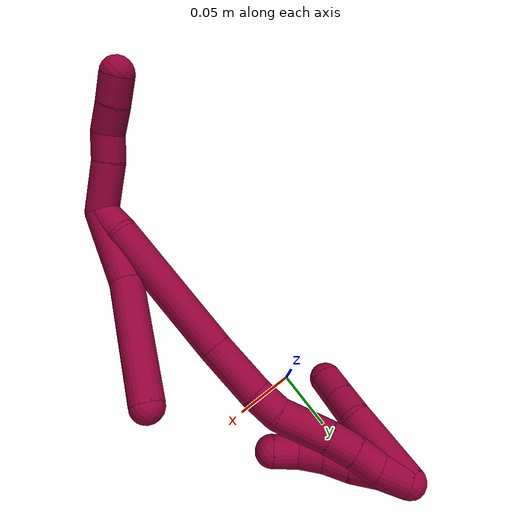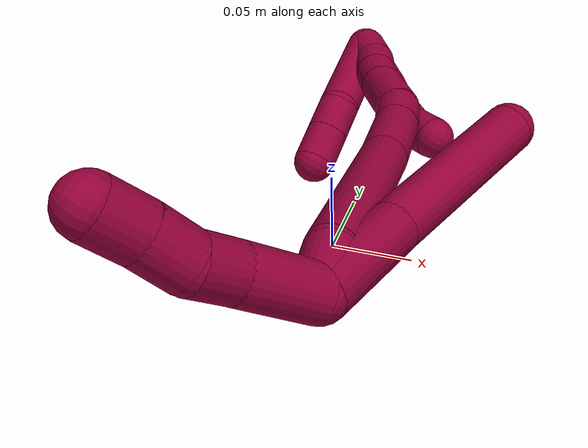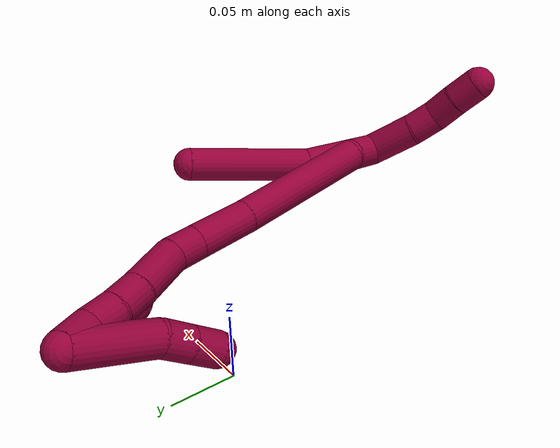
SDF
<sdf version="1.7">
 <world name="default">
  <model name="8">
   <static>0</static>
   <link name="8">
    <collision name="collision-cylinder-e_1_2_8">
     <pose>-0.003837 0.027133 0.009319 -1.23995 -0.132947 0.094975</pose>
     <geometry><cylinder><radius>0.0125</radius><length>0.057888</length></cylinder></geometry>
     <surface>
      <friction><ode><mu>1.16</mu><mu2>1.16</mu2><slip1>0</slip1><slip2>0</slip2></ode></friction>
      <contact><ode><kp>1e+06</kp><kd>1</kd><max_vel>0</max_vel><min_depth>0.001</min_depth></ode></contact>
     </surface>
    </collision>
    <visual name="visual-cylinder-e_1_2_8">
     <pose>-0.003837 0.027133 0.009319 -1.23995 -0.132947 0.094975</pose>
     <geometry><cylinder><radius>0.0125</radius><length>0.057888</length></cylinder></geometry>
     <material><ambient>0.584314 0 0.227451 1</ambient></material>
    </visual>
    <collision name="collision-cylinder-e_2_8_6">
     <pose>-0.023433 0.094212 0.035284 -1.17599 -0.349234 0.23414</pose>
     <geometry><cylinder><radius>0.0125</radius><length>0.092112</length></cylinder></geometry>
     <surface>
      <friction><ode><mu>1.16</mu><mu2>1.16</mu2><slip1>0</slip1><slip2>0</slip2></ode></friction>
      <contact><ode><kp>1e+06</kp><kd>1</kd><max_vel>0</max_vel><min_depth>0.001</min_depth></ode></contact>
     </surface>
    </collision>
    <visual name="visual-cylinder-e_2_8_6">
     <pose>-0.023433 0.094212 0.035284 -1.17599 -0.349234 0.23414</pose>
     <geometry><cylinder><radius>0.0125</radius><length>0.092112</length></cylinder></geometry>
     <material><ambient>0.584314 0 0.227451 1</ambient></material>
    </visual>
    <collision name="collision-cylinder-e_1_2_9">
     <pose>-0.002565 -0.009526 -0.016223 2.61062 -0.1355 -0.489106</pose>
     <geometry><cylinder><radius>0.0125</radius><length>0.037974</length></cylinder></geometry>
     <surface>
      <friction><ode><mu>1.16</mu><mu2>1.16</mu2><slip1>0</slip1><slip2>0</slip2></ode></friction>
      <contact><ode><kp>1e+06</kp><kd>1</kd><max_vel>0</max_vel><min_depth>0.001</min_depth></ode></contact>
     </surface>
    </collision>
    <visual name="visual-cylinder-e_1_2_9">
     <pose>-0.002565 -0.009526 -0.016223 2.61062 -0.1355 -0.489106</pose>
     <geometry><cylinder><radius>0.0125</radius><length>0.037974</length></cylinder></geometry>
     <material><ambient>0.584314 0 0.227451 1</ambient></material>
    </visual>
    <collision name="collision-cylinder-e_2_9_10">
     <pose>-0.00746 -0.025289 -0.040414 2.47751 -0.226387 -0.63694</pose>
     <geometry><cylinder><radius>0.0125</radius><length>0.020768</length></cylinder></geometry>
     <surface>
      <friction><ode><mu>1.16</mu><mu2>1.16</mu2><slip1>0</slip1><slip2>0</slip2></ode></friction>
      <contact><ode><kp>1e+06</kp><kd>1</kd><max_vel>0</max_vel><min_depth>0.001</min_depth></ode></contact>
     </surface>
    </collision>
    <visual name="visual-cylinder-e_2_9_10">
     <pose>-0.00746 -0.025289 -0.040414 2.47751 -0.226387 -0.63694</pose>
     <geometry><cylinder><radius>0.0125</radius><length>0.020768</length></cylinder></geometry>
     <material><ambient>0.584314 0 0.227451 1</ambient></material>
    </visual>
    <collision name="collision-cylinder-e_3_10_11">
     <pose>-0.013263 -0.03474 -0.057717 2.81005 -0.33813 -1.59084</pose>
     <geometry><cylinder><radius>0.0125</radius><length>0.02093</length></cylinder></geometry>
     <surface>
      <friction><ode><mu>1.16</mu><mu2>1.16</mu2><slip1>0</slip1><slip2>0</slip2></ode></friction>
      <contact><ode><kp>1e+06</kp><kd>1</kd><max_vel>0</max_vel><min_depth>0.001</min_depth></ode></contact>
     </surface>
    </collision>
    <visual name="visual-cylinder-e_3_10_11">
     <pose>-0.013263 -0.03474 -0.057717 2.81005 -0.33813 -1.59084</pose>
     <geometry><cylinder><radius>0.0125</radius><length>0.02093</length></cylinder></geometry>
     <material><ambient>0.584314 0 0.227451 1</ambient></material>
    </visual>
    <collision name="collision-cylinder-e_4_11_5">
     <pose>-0.019736 -0.041891 -0.075928 2.72403 -0.299762 -1.23849</pose>
     <geometry><cylinder><radius>0.0125</radius><length>0.020328</length></cylinder></geometry>
     <surface>
      <friction><ode><mu>1.16</mu><mu2>1.16</mu2><slip1>0</slip1><slip2>0</slip2></ode></friction>
      <contact><ode><kp>1e+06</kp><kd>1</kd><max_vel>0</max_vel><min_depth>0.001</min_depth></ode></contact>
     </surface>
    </collision>
    <visual name="visual-cylinder-e_4_11_5">
     <pose>-0.019736 -0.041891 -0.075928 2.72403 -0.299762 -1.23849</pose>
     <geometry><cylinder><radius>0.0125</radius><length>0.020328</length></cylinder></geometry>
     <material><ambient>0.584314 0 0.227451 1</ambient></material>
    </visual>
    <collision name="collision-cylinder-e_1_2_12">
     <pose>-0.001431 0.01208 -0.000922 -1.64699 -0.117613 0.12691</pose>
     <geometry><cylinder><radius>0.0125</radius><length>0.024398</length></cylinder></geometry>
     <surface>
      <friction><ode><mu>1.16</mu><mu2>1.16</mu2><slip1>0</slip1><slip2>0</slip2></ode></friction>
      <contact><ode><kp>1e+06</kp><kd>1</kd><max_vel>0</max_vel><min_depth>0.001</min_depth></ode></contact>
     </surface>
    </collision>
    <visual name="visual-cylinder-e_1_2_12">
     <pose>-0.001431 0.01208 -0.000922 -1.64699 -0.117613 0.12691</pose>
     <geometry><cylinder><radius>0.0125</radius><length>0.024398</length></cylinder></geometry>
     <material><ambient>0.584314 0 0.227451 1</ambient></material>
    </visual>
    <collision name="collision-cylinder-e_2_12_13">
     <pose>0.003107 0.077902 0.002902 -1.4827 0.110206 -0.100917</pose>
     <geometry><cylinder><radius>0.0125</radius><length>0.108562</length></cylinder></geometry>
     <surface>
      <friction><ode><mu>1.16</mu><mu2>1.16</mu2><slip1>0</slip1><slip2>0</slip2></ode></friction>
      <contact><ode><kp>1e+06</kp><kd>1</kd><max_vel>0</max_vel><min_depth>0.001</min_depth></ode></contact>
     </surface>
    </collision>
    <visual name="visual-cylinder-e_2_12_13">
     <pose>0.003107 0.077902 0.002902 -1.4827 0.110206 -0.100917</pose>
     <geometry><cylinder><radius>0.0125</radius><length>0.108562</length></cylinder></geometry>
     <material><ambient>0.584314 0 0.227451 1</ambient></material>
    </visual>
    <collision name="collision-cylinder-e_3_13_14">
     <pose>0.010392 0.153718 0.008197 -1.54598 0.059501 -0.058043</pose>
     <geometry><cylinder><radius>0.0125</radius><length>0.044239</length></cylinder></geometry>
     <surface>
      <friction><ode><mu>1.16</mu><mu2>1.16</mu2><slip1>0</slip1><slip2>0</slip2></ode></friction>
      <contact><ode><kp>1e+06</kp><kd>1</kd><max_vel>0</max_vel><min_depth>0.001</min_depth></ode></contact>
     </surface>
    </collision>
    <visual name="visual-cylinder-e_3_13_14">
     <pose>0.010392 0.153718 0.008197 -1.54598 0.059501 -0.058043</pose>
     <geometry><cylinder><radius>0.0125</radius><length>0.044239</length></cylinder></geometry>
     <material><ambient>0.584314 0 0.227451 1</ambient></material>
    </visual>
    <collision name="collision-cylinder-e_4_14_15">
     <pose>0.012178 0.186378 0.007743 -1.66512 0.044171 -0.048545</pose>
     <geometry><cylinder><radius>0.0125</radius><length>0.021288</length></cylinder></geometry>
     <surface>
      <friction><ode><mu>1.16</mu><mu2>1.16</mu2><slip1>0</slip1><slip2>0</slip2></ode></friction>
      <contact><ode><kp>1e+06</kp><kd>1</kd><max_vel>0</max_vel><min_depth>0.001</min_depth></ode></contact>
     </surface>
    </collision>
    <visual name="visual-cylinder-e_4_14_15">
     <pose>0.012178 0.186378 0.007743 -1.66512 0.044171 -0.048545</pose>
     <geometry><cylinder><radius>0.0125</radius><length>0.021288</length></cylinder></geometry>
     <material><ambient>0.584314 0 0.227451 1</ambient></material>
    </visual>
    <collision name="collision-cylinder-e_5_15_16">
     <pose>0.01721 0.214362 0.000369 -1.92193 0.241444 -0.343837</pose>
     <geometry><cylinder><radius>0.0125</radius><length>0.038164</length></cylinder></geometry>
     <surface>
      <friction><ode><mu>1.16</mu><mu2>1.16</mu2><slip1>0</slip1><slip2>0</slip2></ode></friction>
      <contact><ode><kp>1e+06</kp><kd>1</kd><max_vel>0</max_vel><min_depth>0.001</min_depth></ode></contact>
     </surface>
    </collision>
    <visual name="visual-cylinder-e_5_15_16">
     <pose>0.01721 0.214362 0.000369 -1.92193 0.241444 -0.343837</pose>
     <geometry><cylinder><radius>0.0125</radius><length>0.038164</length></cylinder></geometry>
     <material><ambient>0.584314 0 0.227451 1</ambient></material>
    </visual>
    <collision name="collision-cylinder-e_6_16_17">
     <pose>0.023789 0.241803 -0.008972 -1.85814 0.190215 -0.253956</pose>
     <geometry><cylinder><radius>0.0125</radius><length>0.02133</length></cylinder></geometry>
     <surface>
      <friction><ode><mu>1.16</mu><mu2>1.16</mu2><slip1>0</slip1><slip2>0</slip2></ode></friction>
      <contact><ode><kp>1e+06</kp><kd>1</kd><max_vel>0</max_vel><min_depth>0.001</min_depth></ode></contact>
     </surface>
    </collision>
    <visual name="visual-cylinder-e_6_16_17">
     <pose>0.023789 0.241803 -0.008972 -1.85814 0.190215 -0.253956</pose>
     <geometry><cylinder><radius>0.0125</radius><length>0.02133</length></cylinder></geometry>
     <material><ambient>0.584314 0 0.227451 1</ambient></material>
    </visual>
    <collision name="collision-cylinder-e_7_17_18">
     <pose>0.027074 0.261645 -0.013818 -1.76018 0.126415 -0.152853</pose>
     <geometry><cylinder><radius>0.0125</radius><length>0.020115</length></cylinder></geometry>
     <surface>
      <friction><ode><mu>1.16</mu><mu2>1.16</mu2><slip1>0</slip1><slip2>0</slip2></ode></friction>
      <contact><ode><kp>1e+06</kp><kd>1</kd><max_vel>0</max_vel><min_depth>0.001</min_depth></ode></contact>
     </surface>
    </collision>
    <visual name="visual-cylinder-e_7_17_18">
     <pose>0.027074 0.261645 -0.013818 -1.76018 0.126415 -0.152853</pose>
     <geometry><cylinder><radius>0.0125</radius><length>0.020115</length></cylinder></geometry>
     <material><ambient>0.584314 0 0.227451 1</ambient></material>
    </visual>
    <collision name="collision-cylinder-e_8_18_1">
     <pose>0.029894 0.281319 -0.02017 -1.9962 0.142253 -0.220102</pose>
     <geometry><cylinder><radius>0.0125</radius><length>0.021904</length></cylinder></geometry>
     <surface>
      <friction><ode><mu>1.16</mu><mu2>1.16</mu2><slip1>0</slip1><slip2>0</slip2></ode></friction>
      <contact><ode><kp>1e+06</kp><kd>1</kd><max_vel>0</max_vel><min_depth>0.001</min_depth></ode></contact>
     </surface>
    </collision>
    <visual name="visual-cylinder-e_8_18_1">
     <pose>0.029894 0.281319 -0.02017 -1.9962 0.142253 -0.220102</pose>
     <geometry><cylinder><radius>0.0125</radius><length>0.021904</length></cylinder></geometry>
     <material><ambient>0.584314 0 0.227451 1</ambient></material>
    </visual>
    <collision name="collision-cylinder-e_1_1_19">
     <pose>0.041517 0.264231 -0.023413 1.52515 0.35706 0.341439</pose>
     <geometry><cylinder><radius>0.0125</radius><length>0.057618</length></cylinder></geometry>
     <surface>
      <friction><ode><mu>1.16</mu><mu2>1.16</mu2><slip1>0</slip1><slip2>0</slip2></ode></friction>
      <contact><ode><kp>1e+06</kp><kd>1</kd><max_vel>0</max_vel><min_depth>0.001</min_depth></ode></contact>
     </surface>
    </collision>
    <visual name="visual-cylinder-e_1_1_19">
     <pose>0.041517 0.264231 -0.023413 1.52515 0.35706 0.341439</pose>
     <geometry><cylinder><radius>0.0125</radius><length>0.057618</length></cylinder></geometry>
     <material><ambient>0.584314 0 0.227451 1</ambient></material>
    </visual>
    <collision name="collision-cylinder-e_2_19_20">
     <pose>0.057721 0.228983 -0.021334 1.46879 0.634995 0.576843</pose>
     <geometry><cylinder><radius>0.0125</radius><length>0.020686</length></cylinder></geometry>
     <surface>
      <friction><ode><mu>1.16</mu><mu2>1.16</mu2><slip1>0</slip1><slip2>0</slip2></ode></friction>
      <contact><ode><kp>1e+06</kp><kd>1</kd><max_vel>0</max_vel><min_depth>0.001</min_depth></ode></contact>
     </surface>
    </collision>
    <visual name="visual-cylinder-e_2_19_20">
     <pose>0.057721 0.228983 -0.021334 1.46879 0.634995 0.576843</pose>
     <geometry><cylinder><radius>0.0125</radius><length>0.020686</length></cylinder></geometry>
     <material><ambient>0.584314 0 0.227451 1</ambient></material>
    </visual>
    <collision name="collision-cylinder-e_3_20_4">
     <pose>0.070258 0.211986 -0.019608 1.47038 0.63127 0.574287</pose>
     <geometry><cylinder><radius>0.0125</radius><length>0.021696</length></cylinder></geometry>
     <surface>
      <friction><ode><mu>1.16</mu><mu2>1.16</mu2><slip1>0</slip1><slip2>0</slip2></ode></friction>
      <contact><ode><kp>1e+06</kp><kd>1</kd><max_vel>0</max_vel><min_depth>0.001</min_depth></ode></contact>
     </surface>
    </collision>
    <visual name="visual-cylinder-e_3_20_4">
     <pose>0.070258 0.211986 -0.019608 1.47038 0.63127 0.574287</pose>
     <geometry><cylinder><radius>0.0125</radius><length>0.021696</length></cylinder></geometry>
     <material><ambient>0.584314 0 0.227451 1</ambient></material>
    </visual>
    <collision name="collision-cylinder-e_1_1_21">
     <pose>0.032445 0.282932 -0.019101 0.979843 0.099909 0.053312</pose>
     <geometry><cylinder><radius>0.0125</radius><length>0.02</length></cylinder></geometry>
     <surface>
      <friction><ode><mu>1.16</mu><mu2>1.16</mu2><slip1>0</slip1><slip2>0</slip2></ode></friction>
      <contact><ode><kp>1e+06</kp><kd>1</kd><max_vel>0</max_vel><min_depth>0.001</min_depth></ode></contact>
     </surface>
    </collision>
    <visual name="visual-cylinder-e_1_1_21">
     <pose>0.032445 0.282932 -0.019101 0.979843 0.099909 0.053312</pose>
     <geometry><cylinder><radius>0.0125</radius><length>0.02</length></cylinder></geometry>
     <material><ambient>0.584314 0 0.227451 1</ambient></material>
    </visual>
    <collision name="collision-cylinder-e_2_21_22">
     <pose>0.034217 0.267301 -0.00684 0.831561 0.077615 0.034283</pose>
     <geometry><cylinder><radius>0.0125</radius><length>0.02</length></cylinder></geometry>
     <surface>
      <friction><ode><mu>1.16</mu><mu2>1.16</mu2><slip1>0</slip1><slip2>0</slip2></ode></friction>
      <contact><ode><kp>1e+06</kp><kd>1</kd><max_vel>0</max_vel><min_depth>0.001</min_depth></ode></contact>
     </surface>
    </collision>
    <visual name="visual-cylinder-e_2_21_22">
     <pose>0.034217 0.267301 -0.00684 0.831561 0.077615 0.034283</pose>
     <geometry><cylinder><radius>0.0125</radius><length>0.02</length></cylinder></geometry>
     <material><ambient>0.584314 0 0.227451 1</ambient></material>
    </visual>
    <collision name="collision-cylinder-e_3_22_23">
     <pose>0.035332 0.251496 0.005233 1.00515 0.033878 0.018622</pose>
     <geometry><cylinder><radius>0.0125</radius><length>0.02</length></cylinder></geometry>
     <surface>
      <friction><ode><mu>1.16</mu><mu2>1.16</mu2><slip1>0</slip1><slip2>0</slip2></ode></friction>
      <contact><ode><kp>1e+06</kp><kd>1</kd><max_vel>0</max_vel><min_depth>0.001</min_depth></ode></contact>
     </surface>
    </collision>
    <visual name="visual-cylinder-e_3_22_23">
     <pose>0.035332 0.251496 0.005233 1.00515 0.033878 0.018622</pose>
     <geometry><cylinder><radius>0.0125</radius><length>0.02</length></cylinder></geometry>
     <material><ambient>0.584314 0 0.227451 1</ambient></material>
    </visual>
    <collision name="collision-cylinder-e_4_23_24">
     <pose>0.034931 0.235408 0.016987 0.874342 -0.073957 -0.034575</pose>
     <geometry><cylinder><radius>0.0125</radius><length>0.02</length></cylinder></geometry>
     <surface>
      <friction><ode><mu>1.16</mu><mu2>1.16</mu2><slip1>0</slip1><slip2>0</slip2></ode></friction>
      <contact><ode><kp>1e+06</kp><kd>1</kd><max_vel>0</max_vel><min_depth>0.001</min_depth></ode></contact>
     </surface>
    </collision>
    <visual name="visual-cylinder-e_4_23_24">
     <pose>0.034931 0.235408 0.016987 0.874342 -0.073957 -0.034575</pose>
     <geometry><cylinder><radius>0.0125</radius><length>0.02</length></cylinder></geometry>
     <material><ambient>0.584314 0 0.227451 1</ambient></material>
    </visual>
    <collision name="collision-cylinder-e_5_24_3">
     <pose>0.03049 0.220896 0.029646 0.831172 -0.379298 -0.169013</pose>
     <geometry><cylinder><radius>0.0125</radius><length>0.02</length></cylinder></geometry>
     <surface>
      <friction><ode><mu>1.16</mu><mu2>1.16</mu2><slip1>0</slip1><slip2>0</slip2></ode></friction>
      <contact><ode><kp>1e+06</kp><kd>1</kd><max_vel>0</max_vel><min_depth>0.001</min_depth></ode></contact>
     </surface>
    </collision>
    <visual name="visual-cylinder-e_5_24_3">
     <pose>0.03049 0.220896 0.029646 0.831172 -0.379298 -0.169013</pose>
     <geometry><cylinder><radius>0.0125</radius><length>0.02</length></cylinder></geometry>
     <material><ambient>0.584314 0 0.227451 1</ambient></material>
    </visual>
    <collision name="collision-sphere-3">
     <pose>0.026787 0.214034 0.035907 0 -0 0</pose>
     <geometry><sphere><radius>0.0125</radius></sphere></geometry>
     <surface>
      <friction><ode><mu>1.16</mu><mu2>1.16</mu2><slip1>0</slip1><slip2>0</slip2></ode></friction>
      <contact><ode><kp>1e+06</kp><kd>1</kd><max_vel>0</max_vel><min_depth>0.001</min_depth></ode></contact>
     </surface>
    </collision>
    <visual name="visual-sphere-3">
     <pose>0.026787 0.214034 0.035907 0 -0 0</pose>
     <geometry><sphere><radius>0.0125</radius></sphere></geometry>
     <material><ambient>0.584314 0 0.227451 1</ambient></material>
    </visual>
    <collision name="collision-sphere-24">
     <pose>0.034192 0.227758 0.023385 0 -0 0</pose>
     <geometry><sphere><radius>0.0125</radius></sphere></geometry>
     <surface>
      <friction><ode><mu>1.16</mu><mu2>1.16</mu2><slip1>0</slip1><slip2>0</slip2></ode></friction>
      <contact><ode><kp>1e+06</kp><kd>1</kd><max_vel>0</max_vel><min_depth>0.001</min_depth></ode></contact>
     </surface>
    </collision>
    <visual name="visual-sphere-24">
     <pose>0.034192 0.227758 0.023385 0 -0 0</pose>
     <geometry><sphere><radius>0.0125</radius></sphere></geometry>
     <material><ambient>0.584314 0 0.227451 1</ambient></material>
    </visual>
    <collision name="collision-sphere-23">
     <pose>0.03567 0.243059 0.01059 0 -0 0</pose>
     <geometry><sphere><radius>0.0125</radius></sphere></geometry>
     <surface>
      <friction><ode><mu>1.16</mu><mu2>1.16</mu2><slip1>0</slip1><slip2>0</slip2></ode></friction>
      <contact><ode><kp>1e+06</kp><kd>1</kd><max_vel>0</max_vel><min_depth>0.001</min_depth></ode></contact>
     </surface>
    </collision>
    <visual name="visual-sphere-23">
     <pose>0.03567 0.243059 0.01059 0 -0 0</pose>
     <geometry><sphere><radius>0.0125</radius></sphere></geometry>
     <material><ambient>0.584314 0 0.227451 1</ambient></material>
    </visual>
    <collision name="collision-sphere-22">
     <pose>0.034993 0.259934 -0.000123 0 -0 0</pose>
     <geometry><sphere><radius>0.0125</radius></sphere></geometry>
     <surface>
      <friction><ode><mu>1.16</mu><mu2>1.16</mu2><slip1>0</slip1><slip2>0</slip2></ode></friction>
      <contact><ode><kp>1e+06</kp><kd>1</kd><max_vel>0</max_vel><min_depth>0.001</min_depth></ode></contact>
     </surface>
    </collision>
    <visual name="visual-sphere-22">
     <pose>0.034993 0.259934 -0.000123 0 -0 0</pose>
     <geometry><sphere><radius>0.0125</radius></sphere></geometry>
     <material><ambient>0.584314 0 0.227451 1</ambient></material>
    </visual>
    <collision name="collision-sphere-21">
     <pose>0.033442 0.274669 -0.013557 0 -0 0</pose>
     <geometry><sphere><radius>0.0125</radius></sphere></geometry>
     <surface>
      <friction><ode><mu>1.16</mu><mu2>1.16</mu2><slip1>0</slip1><slip2>0</slip2></ode></friction>
      <contact><ode><kp>1e+06</kp><kd>1</kd><max_vel>0</max_vel><min_depth>0.001</min_depth></ode></contact>
     </surface>
    </collision>
    <visual name="visual-sphere-21">
     <pose>0.033442 0.274669 -0.013557 0 -0 0</pose>
     <geometry><sphere><radius>0.0125</radius></sphere></geometry>
     <material><ambient>0.584314 0 0.227451 1</ambient></material>
    </visual>
    <collision name="collision-sphere-4">
     <pose>0.076661 0.203273 -0.01873 0 -0 0</pose>
     <geometry><sphere><radius>0.0125</radius></sphere></geometry>
     <surface>
      <friction><ode><mu>1.16</mu><mu2>1.16</mu2><slip1>0</slip1><slip2>0</slip2></ode></friction>
      <contact><ode><kp>1e+06</kp><kd>1</kd><max_vel>0</max_vel><min_depth>0.001</min_depth></ode></contact>
     </surface>
    </collision>
    <visual name="visual-sphere-4">
     <pose>0.076661 0.203273 -0.01873 0 -0 0</pose>
     <geometry><sphere><radius>0.0125</radius></sphere></geometry>
     <material><ambient>0.584314 0 0.227451 1</ambient></material>
    </visual>
    <collision name="collision-sphere-20">
     <pose>0.063856 0.2207 -0.020486 0 -0 0</pose>
     <geometry><sphere><radius>0.0125</radius></sphere></geometry>
     <surface>
      <friction><ode><mu>1.16</mu><mu2>1.16</mu2><slip1>0</slip1><slip2>0</slip2></ode></friction>
      <contact><ode><kp>1e+06</kp><kd>1</kd><max_vel>0</max_vel><min_depth>0.001</min_depth></ode></contact>
     </surface>
    </collision>
    <visual name="visual-sphere-20">
     <pose>0.063856 0.2207 -0.020486 0 -0 0</pose>
     <geometry><sphere><radius>0.0125</radius></sphere></geometry>
     <material><ambient>0.584314 0 0.227451 1</ambient></material>
    </visual>
    <collision name="collision-sphere-11">
     <pose>-0.016734 -0.037953 -0.067052 0 -0 0</pose>
     <geometry><sphere><radius>0.0125</radius></sphere></geometry>
     <surface>
      <friction><ode><mu>1.16</mu><mu2>1.16</mu2><slip1>0</slip1><slip2>0</slip2></ode></friction>
      <contact><ode><kp>1e+06</kp><kd>1</kd><max_vel>0</max_vel><min_depth>0.001</min_depth></ode></contact>
     </surface>
    </collision>
    <visual name="visual-sphere-11">
     <pose>-0.016734 -0.037953 -0.067052 0 -0 0</pose>
     <geometry><sphere><radius>0.0125</radius></sphere></geometry>
     <material><ambient>0.584314 0 0.227451 1</ambient></material>
    </visual>
    <collision name="collision-sphere-10">
     <pose>-0.009791 -0.031526 -0.048382 0 -0 0</pose>
     <geometry><sphere><radius>0.0125</radius></sphere></geometry>
     <surface>
      <friction><ode><mu>1.16</mu><mu2>1.16</mu2><slip1>0</slip1><slip2>0</slip2></ode></friction>
      <contact><ode><kp>1e+06</kp><kd>1</kd><max_vel>0</max_vel><min_depth>0.001</min_depth></ode></contact>
     </surface>
    </collision>
    <visual name="visual-sphere-10">
     <pose>-0.009791 -0.031526 -0.048382 0 -0 0</pose>
     <geometry><sphere><radius>0.0125</radius></sphere></geometry>
     <material><ambient>0.584314 0 0.227451 1</ambient></material>
    </visual>
    <collision name="collision-sphere-6">
     <pose>-0.039192 0.134159 0.051929 0 -0 0</pose>
     <geometry><sphere><radius>0.0125</radius></sphere></geometry>
     <surface>
      <friction><ode><mu>1.16</mu><mu2>1.16</mu2><slip1>0</slip1><slip2>0</slip2></ode></friction>
      <contact><ode><kp>1e+06</kp><kd>1</kd><max_vel>0</max_vel><min_depth>0.001</min_depth></ode></contact>
     </surface>
    </collision>
    <visual name="visual-sphere-6">
     <pose>-0.039192 0.134159 0.051929 0 -0 0</pose>
     <geometry><sphere><radius>0.0125</radius></sphere></geometry>
     <material><ambient>0.584314 0 0.227451 1</ambient></material>
    </visual>
    <collision name="collision-sphere-9">
     <pose>-0.00513 -0.019053 -0.032445 0 -0 0</pose>
     <geometry><sphere><radius>0.0125</radius></sphere></geometry>
     <surface>
      <friction><ode><mu>1.16</mu><mu2>1.16</mu2><slip1>0</slip1><slip2>0</slip2></ode></friction>
      <contact><ode><kp>1e+06</kp><kd>1</kd><max_vel>0</max_vel><min_depth>0.001</min_depth></ode></contact>
     </surface>
    </collision>
    <visual name="visual-sphere-9">
     <pose>-0.00513 -0.019053 -0.032445 0 -0 0</pose>
     <geometry><sphere><radius>0.0125</radius></sphere></geometry>
     <material><ambient>0.584314 0 0.227451 1</ambient></material>
    </visual>
    <collision name="collision-sphere-2">
     <geometry><sphere><radius>0.0125</radius></sphere></geometry>
     <surface>
      <friction><ode><mu>1.16</mu><mu2>1.16</mu2><slip1>0</slip1><slip2>0</slip2></ode></friction>
      <contact><ode><kp>1e+06</kp><kd>1</kd><max_vel>0</max_vel><min_depth>0.001</min_depth></ode></contact>
     </surface>
    </collision>
    <visual name="visual-sphere-2">
     <geometry><sphere><radius>0.0125</radius></sphere></geometry>
     <material><ambient>0.584314 0 0.227451 1</ambient></material>
    </visual>
    <collision name="collision-sphere-19">
     <pose>0.051586 0.237267 -0.022181 0 -0 0</pose>
     <geometry><sphere><radius>0.0125</radius></sphere></geometry>
     <surface>
      <friction><ode><mu>1.16</mu><mu2>1.16</mu2><slip1>0</slip1><slip2>0</slip2></ode></friction>
      <contact><ode><kp>1e+06</kp><kd>1</kd><max_vel>0</max_vel><min_depth>0.001</min_depth></ode></contact>
     </surface>
    </collision>
    <visual name="visual-sphere-19">
     <pose>0.051586 0.237267 -0.022181 0 -0 0</pose>
     <geometry><sphere><radius>0.0125</radius></sphere></geometry>
     <material><ambient>0.584314 0 0.227451 1</ambient></material>
    </visual>
    <collision name="collision-sphere-8">
     <pose>-0.007673 0.054265 0.018639 0 -0 0</pose>
     <geometry><sphere><radius>0.0125</radius></sphere></geometry>
     <surface>
      <friction><ode><mu>1.16</mu><mu2>1.16</mu2><slip1>0</slip1><slip2>0</slip2></ode></friction>
      <contact><ode><kp>1e+06</kp><kd>1</kd><max_vel>0</max_vel><min_depth>0.001</min_depth></ode></contact>
     </surface>
    </collision>
    <visual name="visual-sphere-8">
     <pose>-0.007673 0.054265 0.018639 0 -0 0</pose>
     <geometry><sphere><radius>0.0125</radius></sphere></geometry>
     <material><ambient>0.584314 0 0.227451 1</ambient></material>
    </visual>
    <collision name="collision-sphere-5">
     <pose>-0.022737 -0.045829 -0.084805 0 -0 0</pose>
     <geometry><sphere><radius>0.0125</radius></sphere></geometry>
     <surface>
      <friction><ode><mu>1.16</mu><mu2>1.16</mu2><slip1>0</slip1><slip2>0</slip2></ode></friction>
      <contact><ode><kp>1e+06</kp><kd>1</kd><max_vel>0</max_vel><min_depth>0.001</min_depth></ode></contact>
     </surface>
    </collision>
    <visual name="visual-sphere-5">
     <pose>-0.022737 -0.045829 -0.084805 0 -0 0</pose>
     <geometry><sphere><radius>0.0125</radius></sphere></geometry>
     <material><ambient>0.584314 0 0.227451 1</ambient></material>
    </visual>
    <collision name="collision-sphere-12">
     <pose>-0.002863 0.024159 -0.001844 0 -0 0</pose>
     <geometry><sphere><radius>0.0125</radius></sphere></geometry>
     <surface>
      <friction><ode><mu>1.16</mu><mu2>1.16</mu2><slip1>0</slip1><slip2>0</slip2></ode></friction>
      <contact><ode><kp>1e+06</kp><kd>1</kd><max_vel>0</max_vel><min_depth>0.001</min_depth></ode></contact>
     </surface>
    </collision>
    <visual name="visual-sphere-12">
     <pose>-0.002863 0.024159 -0.001844 0 -0 0</pose>
     <geometry><sphere><radius>0.0125</radius></sphere></geometry>
     <material><ambient>0.584314 0 0.227451 1</ambient></material>
    </visual>
    <collision name="collision-sphere-13">
     <pose>0.009077 0.131644 0.007649 0 -0 0</pose>
     <geometry><sphere><radius>0.0125</radius></sphere></geometry>
     <surface>
      <friction><ode><mu>1.16</mu><mu2>1.16</mu2><slip1>0</slip1><slip2>0</slip2></ode></friction>
      <contact><ode><kp>1e+06</kp><kd>1</kd><max_vel>0</max_vel><min_depth>0.001</min_depth></ode></contact>
     </surface>
    </collision>
    <visual name="visual-sphere-13">
     <pose>0.009077 0.131644 0.007649 0 -0 0</pose>
     <geometry><sphere><radius>0.0125</radius></sphere></geometry>
     <material><ambient>0.584314 0 0.227451 1</ambient></material>
    </visual>
    <collision name="collision-sphere-14">
     <pose>0.011708 0.175792 0.008745 0 -0 0</pose>
     <geometry><sphere><radius>0.0125</radius></sphere></geometry>
     <surface>
      <friction><ode><mu>1.16</mu><mu2>1.16</mu2><slip1>0</slip1><slip2>0</slip2></ode></friction>
      <contact><ode><kp>1e+06</kp><kd>1</kd><max_vel>0</max_vel><min_depth>0.001</min_depth></ode></contact>
     </surface>
    </collision>
    <visual name="visual-sphere-14">
     <pose>0.011708 0.175792 0.008745 0 -0 0</pose>
     <geometry><sphere><radius>0.0125</radius></sphere></geometry>
     <material><ambient>0.584314 0 0.227451 1</ambient></material>
    </visual>
    <collision name="collision-sphere-15">
     <pose>0.012648 0.196964 0.006742 0 -0 0</pose>
     <geometry><sphere><radius>0.0125</radius></sphere></geometry>
     <surface>
      <friction><ode><mu>1.16</mu><mu2>1.16</mu2><slip1>0</slip1><slip2>0</slip2></ode></friction>
      <contact><ode><kp>1e+06</kp><kd>1</kd><max_vel>0</max_vel><min_depth>0.001</min_depth></ode></contact>
     </surface>
    </collision>
    <visual name="visual-sphere-15">
     <pose>0.012648 0.196964 0.006742 0 -0 0</pose>
     <geometry><sphere><radius>0.0125</radius></sphere></geometry>
     <material><ambient>0.584314 0 0.227451 1</ambient></material>
    </visual>
    <collision name="collision-sphere-16">
     <pose>0.021773 0.23176 -0.006004 0 -0 0</pose>
     <geometry><sphere><radius>0.0125</radius></sphere></geometry>
     <surface>
      <friction><ode><mu>1.16</mu><mu2>1.16</mu2><slip1>0</slip1><slip2>0</slip2></ode></friction>
      <contact><ode><kp>1e+06</kp><kd>1</kd><max_vel>0</max_vel><min_depth>0.001</min_depth></ode></contact>
     </surface>
    </collision>
    <visual name="visual-sphere-16">
     <pose>0.021773 0.23176 -0.006004 0 -0 0</pose>
     <geometry><sphere><radius>0.0125</radius></sphere></geometry>
     <material><ambient>0.584314 0 0.227451 1</ambient></material>
    </visual>
    <collision name="collision-sphere-17">
     <pose>0.025806 0.251846 -0.01194 0 -0 0</pose>
     <geometry><sphere><radius>0.0125</radius></sphere></geometry>
     <surface>
      <friction><ode><mu>1.16</mu><mu2>1.16</mu2><slip1>0</slip1><slip2>0</slip2></ode></friction>
      <contact><ode><kp>1e+06</kp><kd>1</kd><max_vel>0</max_vel><min_depth>0.001</min_depth></ode></contact>
     </surface>
    </collision>
    <visual name="visual-sphere-17">
     <pose>0.025806 0.251846 -0.01194 0 -0 0</pose>
     <geometry><sphere><radius>0.0125</radius></sphere></geometry>
     <material><ambient>0.584314 0 0.227451 1</ambient></material>
    </visual>
    <collision name="collision-sphere-18">
     <pose>0.028342 0.271444 -0.015696 0 -0 0</pose>
     <geometry><sphere><radius>0.0125</radius></sphere></geometry>
     <surface>
      <friction><ode><mu>1.16</mu><mu2>1.16</mu2><slip1>0</slip1><slip2>0</slip2></ode></friction>
      <contact><ode><kp>1e+06</kp><kd>1</kd><max_vel>0</max_vel><min_depth>0.001</min_depth></ode></contact>
     </surface>
    </collision>
    <visual name="visual-sphere-18">
     <pose>0.028342 0.271444 -0.015696 0 -0 0</pose>
     <geometry><sphere><radius>0.0125</radius></sphere></geometry>
     <material><ambient>0.584314 0 0.227451 1</ambient></material>
    </visual>
    <collision name="collision-sphere-1">
     <pose>0.031447 0.291194 -0.024645 0 -0 0</pose>
     <geometry><sphere><radius>0.0125</radius></sphere></geometry>
     <surface>
      <friction><ode><mu>1.16</mu><mu2>1.16</mu2><slip1>0</slip1><slip2>0</slip2></ode></friction>
      <contact><ode><kp>1e+06</kp><kd>1</kd><max_vel>0</max_vel><min_depth>0.001</min_depth></ode></contact>
     </surface>
    </collision>
    <visual name="visual-sphere-1">
     <pose>0.031447 0.291194 -0.024645 0 -0 0</pose>
     <geometry><sphere><radius>0.0125</radius></sphere></geometry>
     <material><ambient>0.584314 0 0.227451 1</ambient></material>
    </visual>
    <inertial>
     <pose>0.011376 0.135717 -0.002922 0 -0 0</pose>
     <mass>0.75</mass>
     <inertia>
      <ixx>0.000249</ixx>
      <ixy>0</ixy>
      <ixz>0</ixz>
      <iyy>6.8e-05</iyy>
      <iyz>0</iyz>
      <izz>-0.000173</izz>
     </inertia>
    </inertial>
   </link>
   <pose>0.049045 -0.173822 0.113417 -3.04923 1.09993 -2.97908</pose>
  </model>
 </world>
</sdf>
